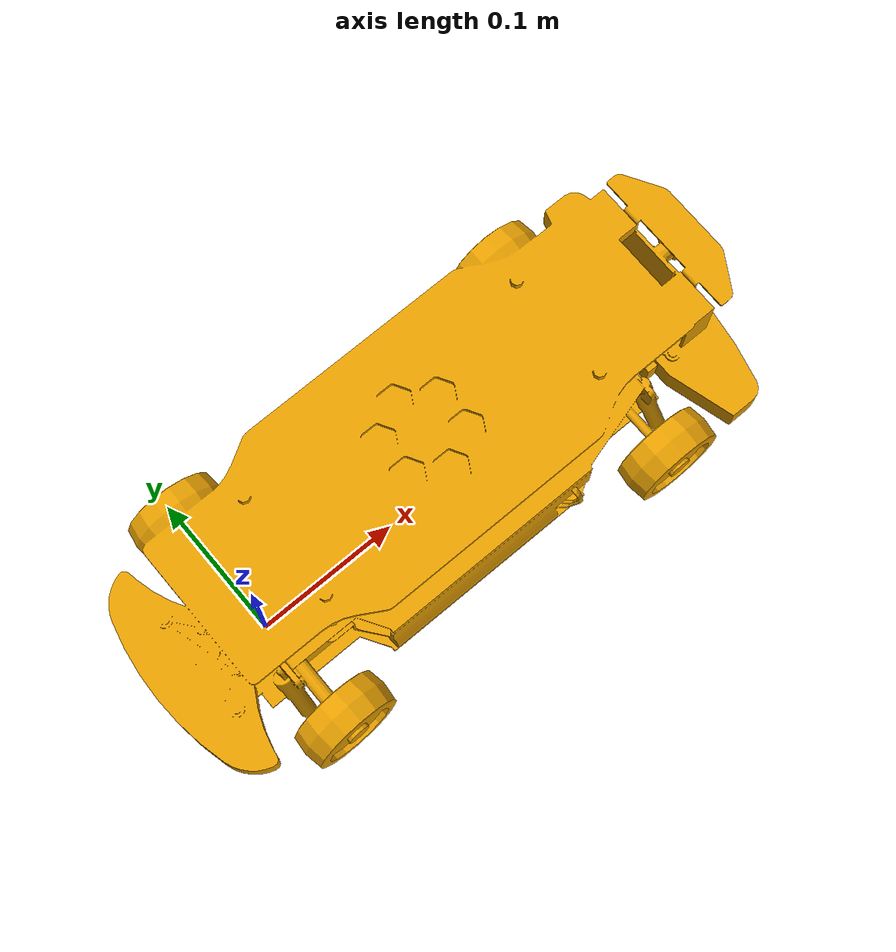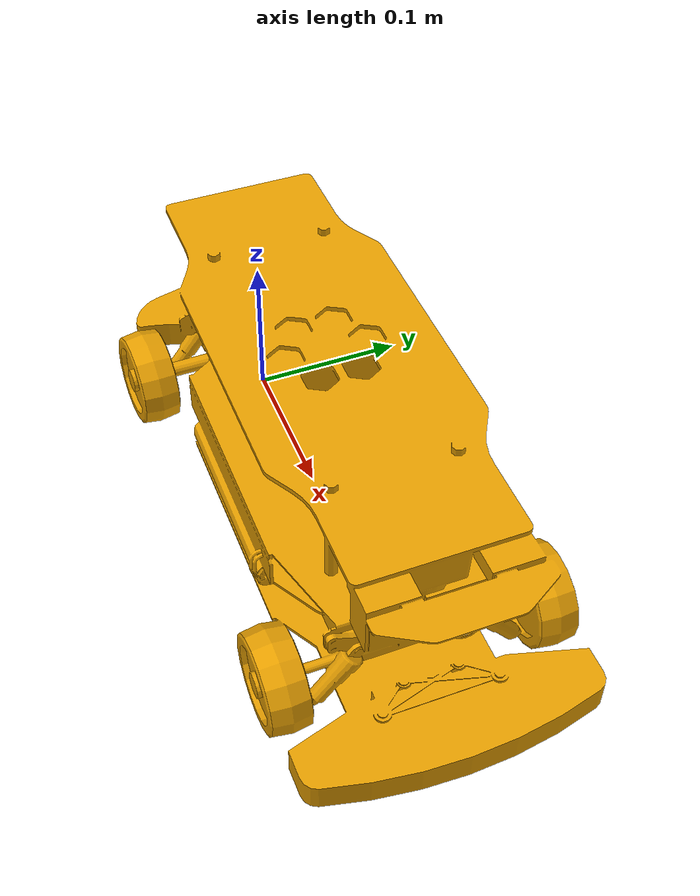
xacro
<robot name="rc110" xmlns:xacro="http://ros.org/wiki/xacro">
    <xacro:arg name="prefix" default=""/>

    <link name="$(arg prefix)base_link">
        <visual>
            <geometry>
                <mesh filename="package://rc110/models/rc110/meshes/rc110.dae"/>
            </geometry>
        </visual>
    </link>

    <link name="$(arg prefix)imu_link"/>
    <joint name="imu_joint" type="fixed">
        <parent link="$(arg prefix)base_link"/>
        <child link="$(arg prefix)imu_link"/>
        <origin xyz="0.085 0.026 0.0631" rpy="0 0 0"/>
    </joint>

    <link name="$(arg prefix)front_camera"/>
    <joint name="front_camera_joint" type="fixed">
        <parent link="$(arg prefix)base_link"/>
        <child link="$(arg prefix)front_camera"/>
        <origin xyz="0.298 0 0.124" rpy="0 0 0"/>
    </joint>

    <link name="$(arg prefix)rear_camera"/>
    <joint name="rear_camera_joint" type="fixed">
        <parent link="$(arg prefix)base_link"/>
        <child link="$(arg prefix)rear_camera"/>
        <origin xyz="-0.037 0 0.124" rpy="0 0 3.1415926"/>
    </joint>

    <link name="$(arg prefix)front_lidar"/>
    <joint name="front_lidar_joint" type="fixed">
        <parent link="$(arg prefix)base_link"/>
        <child link="$(arg prefix)front_lidar"/>
        <origin xyz="0.256 0 0.0915" rpy="3.1415926 0 0"/>
    </joint>

    <link name="$(arg prefix)rear_lidar"/>
    <joint name="rear_lidar_joint" type="fixed">
        <parent link="$(arg prefix)base_link"/>
        <child link="$(arg prefix)rear_lidar"/>
        <origin xyz="0.004 0 0.0915" rpy="0 3.1415926 0"/>
    </joint>
</robot>
